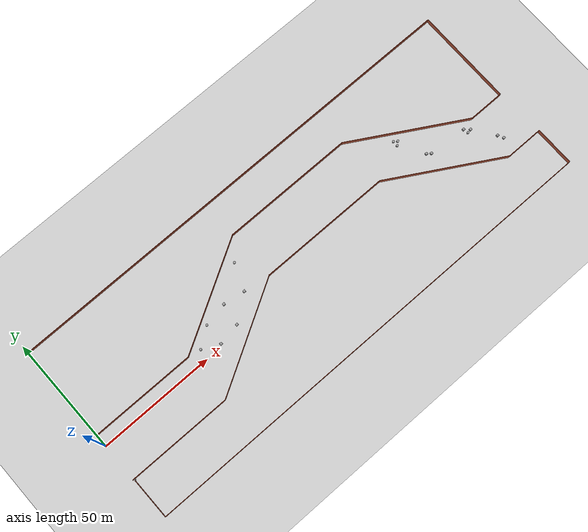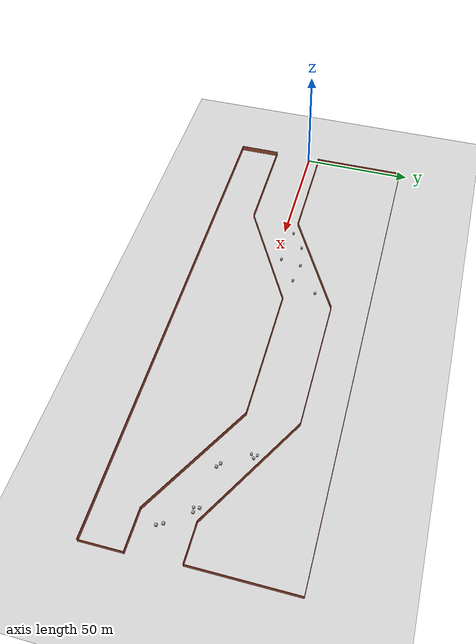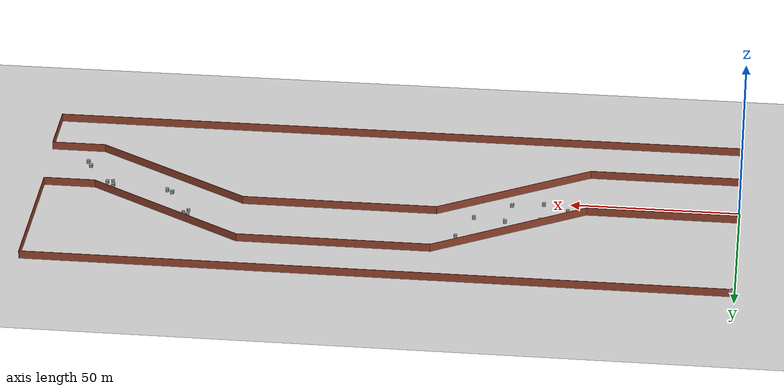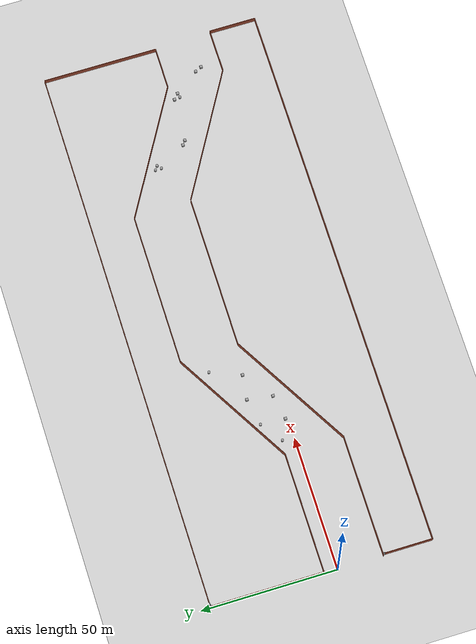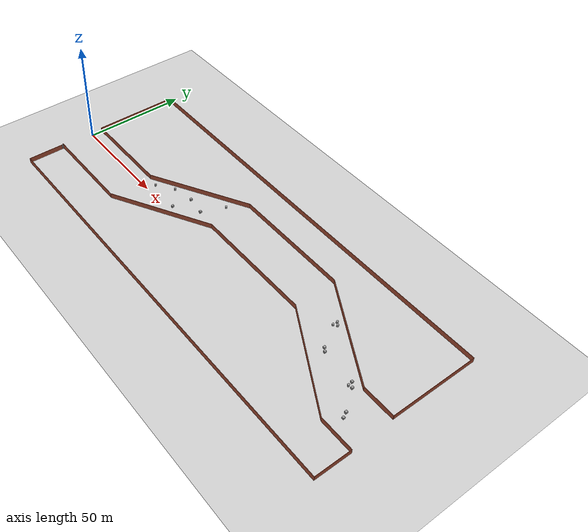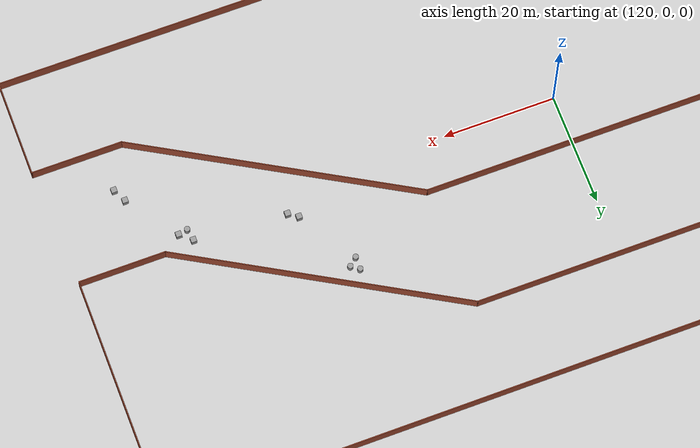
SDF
<sdf version="1.6">
 <world name="default">
  <light name="sun" type="directional">
   <pose>0 0 10 0 -0 0</pose>
   <diffuse>0.8 0.8 0.8 1</diffuse>
   <specular>0.1 0.1 0.1 1</specular>
   <attenuation>
    <range>1000</range>
    <constant>0.9</constant>
    <linear>0.01</linear>
    <quadratic>0.001</quadratic>
   </attenuation>
   <direction>-0.5 0.5 -1</direction>
  </light>
  <model name="ground_plane">
   <static>1</static>
   <link name="link">
    <collision name="collision">
     <geometry><plane><normal>0 0 1</normal><size>100 100</size></plane></geometry>
     <surface><friction><ode><mu>100</mu><mu2>50</mu2></ode></friction></surface>
    </collision>
    <visual name="visual">
     <cast_shadows>0</cast_shadows>
     <geometry><plane><normal>0 0 1</normal><size>100 100</size></plane></geometry>
     <material>
      <script><uri>file://media/materials/scripts/gazebo.material</uri><name>Gazebo/Grey</name></script>
     </material>
    </visual>
   </link>
  </model>
  <gravity>0 0 -9.8</gravity>
  <magnetic_field>6e-06 2.3e-05 -4.2e-05</magnetic_field>
  <atmosphere type="adiabatic"/>
  <physics name="default_physics" default="0" type="ode">
   <max_step_size>0.001</max_step_size>
   <real_time_factor>1</real_time_factor>
   <real_time_update_rate>1000</real_time_update_rate>
  </physics>
  <scene><ambient>0.4 0.4 0.4 1</ambient><background>0.7 0.7 0.7 1</background><shadows>1</shadows></scene>
  <spherical_coordinates>
   <surface_model>EARTH_WGS84</surface_model>
   <latitude_deg>0</latitude_deg>
   <longitude_deg>0</longitude_deg>
   <elevation>0</elevation>
   <heading_deg>0</heading_deg>
  </spherical_coordinates>
  <model name="trail1">
   <pose>104.047 5.85797 0 0 -0 0</pose>
   <link name="Wall_0">
    <collision name="Wall_0_Collision">
     <geometry><box><size>45 0.15 2.5</size></box></geometry>
     <pose>0 0 1.25 0 -0 0</pose>
    </collision>
    <visual name="Wall_0_Visual">
     <pose>0 0 1.25 0 -0 0</pose>
     <geometry><box><size>45 0.15 2.5</size></box></geometry>
     <material>
      <script><uri>file://media/materials/scripts/gazebo.material</uri><name>Gazebo/Bricks</name></script>
      <ambient>1 1 1 1</ambient>
     </material>
    </visual>
    <pose>-81.5537 -0.748555 0 0 -0 0</pose>
   </link>
   <link name="Wall_1">
    <collision name="Wall_1_Collision">
     <geometry><box><size>50.75 0.15 2.5</size></box></geometry>
     <pose>0 0 1.25 0 -0 0</pose>
    </collision>
    <visual name="Wall_1_Visual">
     <pose>0 0 1.25 0 -0 0</pose>
     <geometry><box><size>50.75 0.15 2.5</size></box></geometry>
     <material>
      <script><uri>file://media/materials/scripts/gazebo.material</uri><name>Gazebo/Bricks</name></script>
      <ambient>1 1 1 1</ambient>
     </material>
    </visual>
    <pose>-37.2183 11.9014 0 0 -0 0.523599</pose>
   </link>
   <link name="Wall_10">
    <collision name="Wall_10_Collision">
     <geometry><box><size>45.25 0.15 2.5</size></box></geometry>
     <pose>0 0 1.25 0 -0 0</pose>
    </collision>
    <visual name="Wall_10_Visual">
     <pose>0 0 1.25 0 -0 0</pose>
     <geometry><box><size>45.25 0.15 2.5</size></box></geometry>
     <material>
      <script><uri>file://media/materials/scripts/gazebo.material</uri><name>Gazebo/Bricks</name></script>
      <ambient>1 1 1 1</ambient>
     </material>
    </visual>
    <pose>-81.6452 -22.3933 0 0 -0 0</pose>
   </link>
   <link name="Wall_11">
    <collision name="Wall_11_Collision">
     <geometry><box><size>51 0.15 2.5</size></box></geometry>
     <pose>0 0 1.25 0 -0 0</pose>
    </collision>
    <visual name="Wall_11_Visual">
     <pose>0 0 1.25 0 -0 0</pose>
     <geometry><box><size>51 0.15 2.5</size></box></geometry>
     <material>
      <script><uri>file://media/materials/scripts/gazebo.material</uri><name>Gazebo/Bricks</name></script>
      <ambient>1 1 1 1</ambient>
     </material>
    </visual>
    <pose>-37.0765 -9.6808 0 0 -0 0.523599</pose>
   </link>
   <link name="Wall_12">
    <collision name="Wall_12_Collision">
     <geometry><box><size>57.75 0.15 2.5</size></box></geometry>
     <pose>0 0 1.25 0 -0 0</pose>
    </collision>
    <visual name="Wall_12_Visual">
     <pose>0 0 1.25 0 -0 0</pose>
     <geometry><box><size>57.75 0.15 2.5</size></box></geometry>
     <material>
      <script><uri>file://media/materials/scripts/gazebo.material</uri><name>Gazebo/Bricks</name></script>
      <ambient>1 1 1 1</ambient>
     </material>
    </visual>
    <pose>13.7422 3.0317 0 0 -0 0</pose>
   </link>
   <link name="Wall_13">
    <collision name="Wall_13_Collision">
     <geometry><box><size>52.75 0.15 2.5</size></box></geometry>
     <pose>0 0 1.25 0 -0 0</pose>
    </collision>
    <visual name="Wall_13_Visual">
     <pose>0 0 1.25 0 -0 0</pose>
     <geometry><box><size>52.75 0.15 2.5</size></box></geometry>
     <material>
      <script><uri>file://media/materials/scripts/gazebo.material</uri><name>Gazebo/Bricks</name></script>
      <ambient>1 1 1 1</ambient>
     </material>
    </visual>
    <pose>65.3187 -10.1183 0 0 0 -0.523599</pose>
   </link>
   <link name="Wall_14">
    <collision name="Wall_14_Collision">
     <geometry><box><size>16.25 0.15 2.5</size></box></geometry>
     <pose>0 0 1.25 0 -0 0</pose>
    </collision>
    <visual name="Wall_14_Visual">
     <pose>0 0 1.25 0 -0 0</pose>
     <geometry><box><size>16.25 0.15 2.5</size></box></geometry>
     <material>
      <script><uri>file://media/materials/scripts/gazebo.material</uri><name>Gazebo/Bricks</name></script>
      <ambient>1 1 1 1</ambient>
     </material>
    </visual>
    <pose>96.1452 -23.2683 0 0 -0 0</pose>
   </link>
   <link name="Wall_15">
    <collision name="Wall_15_Collision">
     <geometry><box><size>17.5 0.15 2.5</size></box></geometry>
     <pose>0 0 1.25 0 -0 0</pose>
    </collision>
    <visual name="Wall_15_Visual">
     <pose>0 0 1.25 0 -0 0</pose>
     <geometry><box><size>17.5 0.15 2.5</size></box></geometry>
     <material>
      <script><uri>file://media/materials/scripts/gazebo.material</uri><name>Gazebo/Bricks</name></script>
      <ambient>1 1 1 1</ambient>
     </material>
    </visual>
    <pose>104.195 -31.9433 0 0 0 -1.5708</pose>
   </link>
   <link name="Wall_16">
    <collision name="Wall_16_Collision">
     <geometry><box><size>208 0.15 2.5</size></box></geometry>
     <pose>0 0 1.25 0 -0 0</pose>
    </collision>
    <visual name="Wall_16_Visual">
     <pose>0 0 1.25 0 -0 0</pose>
     <geometry><box><size>208 0.15 2.5</size></box></geometry>
     <material>
      <script><uri>file://media/materials/scripts/gazebo.material</uri><name>Gazebo/Bricks</name></script>
      <ambient>1 1 1 1</ambient>
     </material>
    </visual>
    <pose>0.270161 -40.6183 0 0 -0 3.14159</pose>
   </link>
   <link name="Wall_17">
    <collision name="Wall_17_Collision">
     <geometry><box><size>17.5 0.15 2.5</size></box></geometry>
     <pose>0 0 1.25 0 -0 0</pose>
    </collision>
    <visual name="Wall_17_Visual">
     <pose>0 0 1.25 0 -0 0</pose>
     <geometry><box><size>17.5 0.15 2.5</size></box></geometry>
     <material>
      <script><uri>file://media/materials/scripts/gazebo.material</uri><name>Gazebo/Bricks</name></script>
      <ambient>1 1 1 1</ambient>
     </material>
    </visual>
    <pose>-103.655 -31.9433 0 0 -0 1.5708</pose>
   </link>
   <link name="Wall_18">
    <collision name="Wall_18_Collision">
     <geometry><box><size>0.75 0.15 2.5</size></box></geometry>
     <pose>0 0 1.25 0 -0 0</pose>
    </collision>
    <visual name="Wall_18_Visual">
     <pose>0 0 1.25 0 -0 0</pose>
     <geometry><box><size>0.75 0.15 2.5</size></box></geometry>
     <material>
      <script><uri>file://media/materials/scripts/gazebo.material</uri><name>Gazebo/Grey</name></script>
      <ambient>1 1 1 1</ambient>
     </material>
    </visual>
    <pose>-103.505 -23.0085 0 0 -0 1.0472</pose>
   </link>
   <link name="Wall_2">
    <collision name="Wall_2_Collision">
     <geometry><box><size>57.25 0.15 2.5</size></box></geometry>
     <pose>0 0 1.25 0 -0 0</pose>
    </collision>
    <visual name="Wall_2_Visual">
     <pose>0 0 1.25 0 -0 0</pose>
     <geometry><box><size>57.25 0.15 2.5</size></box></geometry>
     <material>
      <script><uri>file://media/materials/scripts/gazebo.material</uri><name>Gazebo/Bricks</name></script>
      <ambient>1 1 1 1</ambient>
     </material>
    </visual>
    <pose>13.2422 24.5514 0 0 -0 0</pose>
   </link>
   <link name="Wall_3">
    <collision name="Wall_3_Collision">
     <geometry><box><size>53.25 0.15 2.5</size></box></geometry>
     <pose>0 0 1.25 0 -0 0</pose>
    </collision>
    <visual name="Wall_3_Visual">
     <pose>0 0 1.25 0 -0 0</pose>
     <geometry><box><size>53.25 0.15 2.5</size></box></geometry>
     <material>
      <script><uri>file://media/materials/scripts/gazebo.material</uri><name>Gazebo/Bricks</name></script>
      <ambient>1 1 1 1</ambient>
     </material>
    </visual>
    <pose>64.7851 11.2764 0 0 0 -0.523599</pose>
   </link>
   <link name="Wall_4">
    <collision name="Wall_4_Collision">
     <geometry><box><size>15.5 0.15 2.5</size></box></geometry>
     <pose>0 0 1.25 0 -0 0</pose>
    </collision>
    <visual name="Wall_4_Visual">
     <pose>0 0 1.25 0 -0 0</pose>
     <geometry><box><size>15.5 0.15 2.5</size></box></geometry>
     <material>
      <script><uri>file://media/materials/scripts/gazebo.material</uri><name>Gazebo/Bricks</name></script>
      <ambient>1 1 1 1</ambient>
     </material>
    </visual>
    <pose>95.4531 -1.99856 0 0 -0 0</pose>
   </link>
   <link name="Wall_5">
    <collision name="Wall_5_Collision">
     <geometry><box><size>42.75 0.15 2.5</size></box></geometry>
     <pose>0 0 1.25 0 -0 0</pose>
    </collision>
    <visual name="Wall_5_Visual">
     <pose>0 0 1.25 0 -0 0</pose>
     <geometry><box><size>42.75 0.15 2.5</size></box></geometry>
     <material>
      <script><uri>file://media/materials/scripts/gazebo.material</uri><name>Gazebo/Bricks</name></script>
      <ambient>1 1 1 1</ambient>
     </material>
    </visual>
    <pose>103.128 19.3014 0 0 -0 1.5708</pose>
   </link>
   <link name="Wall_6">
    <collision name="Wall_6_Collision">
     <geometry><box><size>205.75 0.15 2.5</size></box></geometry>
     <pose>0 0 1.25 0 -0 0</pose>
    </collision>
    <visual name="Wall_6_Visual">
     <pose>0 0 1.25 0 -0 0</pose>
     <geometry><box><size>205.75 0.15 2.5</size></box></geometry>
     <material>
      <script><uri>file://media/materials/scripts/gazebo.material</uri><name>Gazebo/Bricks</name></script>
      <ambient>1 1 1 1</ambient>
     </material>
    </visual>
    <pose>0.328117 40.6014 0 0 -0 3.14159</pose>
   </link>
   <link name="Wall_7">
    <collision name="Wall_7_Collision">
     <geometry><box><size>1.5 0.15 2.5</size></box></geometry>
     <pose>0 0 1.25 0 -0 0</pose>
    </collision>
    <visual name="Wall_7_Visual">
     <pose>0 0 1.25 0 -0 0</pose>
     <geometry><box><size>1.5 0.15 2.5</size></box></geometry>
     <material>
      <script><uri>file://media/materials/scripts/gazebo.material</uri><name>Gazebo/Grey</name></script>
      <ambient>1 1 1 1</ambient>
     </material>
    </visual>
    <pose>-103.124 40.4267 0 0 0 -2.87979</pose>
   </link>
   <link name="Wall_8">
    <collision name="Wall_8_Collision">
     <geometry><box><size>41.5 0.15 2.5</size></box></geometry>
     <pose>0 0 1.25 0 -0 0</pose>
    </collision>
    <visual name="Wall_8_Visual">
     <pose>0 0 1.25 0 -0 0</pose>
     <geometry><box><size>41.5 0.15 2.5</size></box></geometry>
     <material>
      <script><uri>file://media/materials/scripts/gazebo.material</uri><name>Gazebo/Bricks</name></script>
      <ambient>1 1 1 1</ambient>
     </material>
    </visual>
    <pose>-103.776 19.577 0 0 0 -1.5708</pose>
   </link>
   <static>1</static>
  </model>
  <model name="unit_cylinder_0">
   <pose>50.4401 4.39491 0.499998 3e-06 -2e-06 0</pose>
   <link name="link">
    <inertial>
     <mass>1</mass>
     <inertia><ixx>0.145833</ixx><ixy>0</ixy><ixz>0</ixz><iyy>0.145833</iyy><iyz>0</iyz><izz>0.125</izz></inertia>
    </inertial>
    <collision name="collision">
     <geometry><cylinder><radius>0.5</radius><length>1</length></cylinder></geometry>
    </collision>
    <visual name="visual">
     <geometry><cylinder><radius>0.5</radius><length>1</length></cylinder></geometry>
     <material>
      <script><name>Gazebo/Grey</name><uri>file://media/materials/scripts/gazebo.material</uri></script>
     </material>
    </visual>
   </link>
  </model>
  <model name="unit_box_0">
   <pose>57.7395 0.962255 0.499995 -1e-05 0 0</pose>
   <link name="link">
    <inertial>
     <mass>1</mass>
     <inertia>
      <ixx>0.166667</ixx>
      <ixy>0</ixy>
      <ixz>0</ixz>
      <iyy>0.166667</iyy>
      <iyz>0</iyz>
      <izz>0.166667</izz>
     </inertia>
    </inertial>
    <collision name="collision"><geometry><box><size>1 1 1</size></box></geometry></collision>
    <visual name="visual">
     <geometry><box><size>1 1 1</size></box></geometry>
     <material>
      <script><name>Gazebo/Grey</name><uri>file://media/materials/scripts/gazebo.material</uri></script>
     </material>
    </visual>
   </link>
  </model>
  <model name="unit_cylinder_1">
   <pose>58.2946 10.0639 0.499998 3e-06 -3e-06 0</pose>
   <link name="link">
    <inertial>
     <mass>1</mass>
     <inertia><ixx>0.145833</ixx><ixy>0</ixy><ixz>0</ixz><iyy>0.145833</iyy><iyz>0</iyz><izz>0.125</izz></inertia>
    </inertial>
    <collision name="collision">
     <geometry><cylinder><radius>0.5</radius><length>1</length></cylinder></geometry>
    </collision>
    <visual name="visual">
     <geometry><cylinder><radius>0.5</radius><length>1</length></cylinder></geometry>
     <material>
      <script><name>Gazebo/Grey</name><uri>file://media/materials/scripts/gazebo.material</uri></script>
     </material>
    </visual>
   </link>
  </model>
  <model name="unit_box_1">
   <pose>67.1 2.62962 0.499995 -1e-05 0 0</pose>
   <link name="link">
    <inertial>
     <mass>1</mass>
     <inertia>
      <ixx>0.166667</ixx>
      <ixy>0</ixy>
      <ixz>0</ixz>
      <iyy>0.166667</iyy>
      <iyz>0</iyz>
      <izz>0.166667</izz>
     </inertia>
    </inertial>
    <collision name="collision"><geometry><box><size>1 1 1</size></box></geometry></collision>
    <visual name="visual">
     <geometry><box><size>1 1 1</size></box></geometry>
     <material>
      <script><name>Gazebo/Grey</name><uri>file://media/materials/scripts/gazebo.material</uri></script>
     </material>
    </visual>
   </link>
  </model>
  <model name="unit_box_2">
   <pose>68.509 11.9353 0.499995 0 1e-05 0</pose>
   <link name="link">
    <inertial>
     <mass>1</mass>
     <inertia>
      <ixx>0.166667</ixx>
      <ixy>0</ixy>
      <ixz>0</ixz>
      <iyy>0.166667</iyy>
      <iyz>0</iyz>
      <izz>0.166667</izz>
     </inertia>
    </inertial>
    <collision name="collision"><geometry><box><size>1 1 1</size></box></geometry></collision>
    <visual name="visual">
     <geometry><box><size>1 1 1</size></box></geometry>
     <material>
      <script><name>Gazebo/Grey</name><uri>file://media/materials/scripts/gazebo.material</uri></script>
     </material>
    </visual>
   </link>
  </model>
  <model name="unit_box_3">
   <pose>77.7421 10.6364 0.499995 -1e-05 0 0</pose>
   <link name="link">
    <inertial>
     <mass>1</mass>
     <inertia>
      <ixx>0.166667</ixx>
      <ixy>0</ixy>
      <ixz>0</ixz>
      <iyy>0.166667</iyy>
      <iyz>0</iyz>
      <izz>0.166667</izz>
     </inertia>
    </inertial>
    <collision name="collision"><geometry><box><size>1 1 1</size></box></geometry></collision>
    <visual name="visual">
     <geometry><box><size>1 1 1</size></box></geometry>
     <material>
      <script><name>Gazebo/Grey</name><uri>file://media/materials/scripts/gazebo.material</uri></script>
     </material>
    </visual>
   </link>
  </model>
  <model name="unit_cylinder_2">
   <pose>82.2284 21.7842 0.499998 3e-06 -3e-06 0</pose>
   <link name="link">
    <inertial>
     <mass>1</mass>
     <inertia><ixx>0.145833</ixx><ixy>0</ixy><ixz>0</ixz><iyy>0.145833</iyy><iyz>0</iyz><izz>0.125</izz></inertia>
    </inertial>
    <collision name="collision">
     <geometry><cylinder><radius>0.5</radius><length>1</length></cylinder></geometry>
    </collision>
    <visual name="visual">
     <geometry><cylinder><radius>0.5</radius><length>1</length></cylinder></geometry>
     <material>
      <script><name>Gazebo/Grey</name><uri>file://media/materials/scripts/gazebo.material</uri></script>
     </material>
    </visual>
   </link>
  </model>
  <model name="unit_cylinder_3">
   <pose>161.976 17.5994 0.499992 -3e-06 3e-06 0</pose>
   <link name="link">
    <inertial>
     <mass>1</mass>
     <inertia><ixx>0.145833</ixx><ixy>0</ixy><ixz>0</ixz><iyy>0.145833</iyy><iyz>0</iyz><izz>0.125</izz></inertia>
    </inertial>
    <collision name="collision">
     <geometry><cylinder><radius>0.5</radius><length>1</length></cylinder></geometry>
    </collision>
    <visual name="visual">
     <geometry><cylinder><radius>0.5</radius><length>1</length></cylinder></geometry>
     <material>
      <script><name>Gazebo/Grey</name><uri>file://media/materials/scripts/gazebo.material</uri></script>
     </material>
    </visual>
   </link>
  </model>
  <model name="unit_cylinder_4">
   <pose>163.392 16.5835 0.499992 -3e-06 4e-06 0</pose>
   <link name="link">
    <inertial>
     <mass>1</mass>
     <inertia><ixx>0.145833</ixx><ixy>0</ixy><ixz>0</ixz><iyy>0.145833</iyy><iyz>0</iyz><izz>0.125</izz></inertia>
    </inertial>
    <collision name="collision">
     <geometry><cylinder><radius>0.5</radius><length>1</length></cylinder></geometry>
    </collision>
    <visual name="visual">
     <geometry><cylinder><radius>0.5</radius><length>1</length></cylinder></geometry>
     <material>
      <script><name>Gazebo/Grey</name><uri>file://media/materials/scripts/gazebo.material</uri></script>
     </material>
    </visual>
   </link>
  </model>
  <model name="unit_cylinder_5">
   <pose>161.981 15.3602 0.499992 -3e-06 4e-06 0</pose>
   <link name="link">
    <inertial>
     <mass>1</mass>
     <inertia><ixx>0.145833</ixx><ixy>0</ixy><ixz>0</ixz><iyy>0.145833</iyy><iyz>0</iyz><izz>0.125</izz></inertia>
    </inertial>
    <collision name="collision">
     <geometry><cylinder><radius>0.5</radius><length>1</length></cylinder></geometry>
    </collision>
    <visual name="visual">
     <geometry><cylinder><radius>0.5</radius><length>1</length></cylinder></geometry>
     <material>
      <script><name>Gazebo/Grey</name><uri>file://media/materials/scripts/gazebo.material</uri></script>
     </material>
    </visual>
   </link>
  </model>
  <model name="unit_box_4">
   <pose>168.379 5.19447 0.499995 0 1e-05 0</pose>
   <link name="link">
    <inertial>
     <mass>1</mass>
     <inertia>
      <ixx>0.166667</ixx>
      <ixy>0</ixy>
      <ixz>0</ixz>
      <iyy>0.166667</iyy>
      <iyz>0</iyz>
      <izz>0.166667</izz>
     </inertia>
    </inertial>
    <collision name="collision"><geometry><box><size>1 1 1</size></box></geometry></collision>
    <visual name="visual">
     <geometry><box><size>1 1 1</size></box></geometry>
     <material>
      <script><name>Gazebo/Grey</name><uri>file://media/materials/scripts/gazebo.material</uri></script>
     </material>
    </visual>
   </link>
  </model>
  <model name="unit_box_5">
   <pose>170.004 4.02191 0.499995 -1e-05 0 0</pose>
   <link name="link">
    <inertial>
     <mass>1</mass>
     <inertia>
      <ixx>0.166667</ixx>
      <ixy>0</ixy>
      <ixz>0</ixz>
      <iyy>0.166667</iyy>
      <iyz>0</iyz>
      <izz>0.166667</izz>
     </inertia>
    </inertial>
    <collision name="collision"><geometry><box><size>1 1 1</size></box></geometry></collision>
    <visual name="visual">
     <geometry><box><size>1 1 1</size></box></geometry>
     <material>
      <script><name>Gazebo/Grey</name><uri>file://media/materials/scripts/gazebo.material</uri></script>
     </material>
    </visual>
   </link>
  </model>
  <model name="unit_box_6">
   <pose>188.544 1.11323 0.499995 0 1e-05 0</pose>
   <link name="link">
    <inertial>
     <mass>1</mass>
     <inertia>
      <ixx>0.166667</ixx>
      <ixy>0</ixy>
      <ixz>0</ixz>
      <iyy>0.166667</iyy>
      <iyz>0</iyz>
      <izz>0.166667</izz>
     </inertia>
    </inertial>
    <collision name="collision"><geometry><box><size>1 1 1</size></box></geometry></collision>
    <visual name="visual">
     <geometry><box><size>1 1 1</size></box></geometry>
     <material>
      <script><name>Gazebo/Grey</name><uri>file://media/materials/scripts/gazebo.material</uri></script>
     </material>
    </visual>
   </link>
  </model>
  <model name="unit_box_7">
   <pose>186.523 2.91284 0.499995 -1e-05 0 0</pose>
   <link name="link">
    <inertial>
     <mass>1</mass>
     <inertia>
      <ixx>0.166667</ixx>
      <ixy>0</ixy>
      <ixz>0</ixz>
      <iyy>0.166667</iyy>
      <iyz>0</iyz>
      <izz>0.166667</izz>
     </inertia>
    </inertial>
    <collision name="collision"><geometry><box><size>1 1 1</size></box></geometry></collision>
    <visual name="visual">
     <geometry><box><size>1 1 1</size></box></geometry>
     <material>
      <script><name>Gazebo/Grey</name><uri>file://media/materials/scripts/gazebo.material</uri></script>
     </material>
    </visual>
   </link>
  </model>
  <model name="unit_cylinder_6">
   <pose>186.882 0.777364 0.499997 3e-06 4e-06 -0</pose>
   <link name="link">
    <inertial>
     <mass>1</mass>
     <inertia><ixx>0.145833</ixx><ixy>0</ixy><ixz>0</ixz><iyy>0.145833</iyy><iyz>0</iyz><izz>0.125</izz></inertia>
    </inertial>
    <collision name="collision">
     <geometry><cylinder><radius>0.5</radius><length>1</length></cylinder></geometry>
    </collision>
    <visual name="visual">
     <geometry><cylinder><radius>0.5</radius><length>1</length></cylinder></geometry>
     <material>
      <script><name>Gazebo/Grey</name><uri>file://media/materials/scripts/gazebo.material</uri></script>
     </material>
    </visual>
   </link>
  </model>
  <model name="unit_box_8">
   <pose>194.99 -7.82416 0.499995 -1e-05 0 0</pose>
   <link name="link">
    <inertial>
     <mass>1</mass>
     <inertia>
      <ixx>0.166667</ixx>
      <ixy>0</ixy>
      <ixz>0</ixz>
      <iyy>0.166667</iyy>
      <iyz>0</iyz>
      <izz>0.166667</izz>
     </inertia>
    </inertial>
    <collision name="collision"><geometry><box><size>1 1 1</size></box></geometry></collision>
    <visual name="visual">
     <geometry><box><size>1 1 1</size></box></geometry>
     <material>
      <script><name>Gazebo/Grey</name><uri>file://media/materials/scripts/gazebo.material</uri></script>
     </material>
    </visual>
   </link>
  </model>
  <model name="unit_box_9">
   <pose>196.145 -10.2123 0.5 0 -0 0</pose>
   <link name="link">
    <inertial>
     <mass>1</mass>
     <inertia>
      <ixx>0.166667</ixx>
      <ixy>0</ixy>
      <ixz>0</ixz>
      <iyy>0.166667</iyy>
      <iyz>0</iyz>
      <izz>0.166667</izz>
     </inertia>
    </inertial>
    <collision name="collision"><geometry><box><size>1 1 1</size></box></geometry></collision>
    <visual name="visual">
     <geometry><box><size>1 1 1</size></box></geometry>
     <material>
      <script><name>Gazebo/Grey</name><uri>file://media/materials/scripts/gazebo.material</uri></script>
     </material>
    </visual>
   </link>
  </model>
  <plugin name="ros_interface_plugin" filename="librotors_gazebo_ros_interface_plugin.so"/>
  <plugin name="gazebo_octomap" filename="librotors_gazebo_octomap_plugin.so"/>
 </world>
</sdf>
